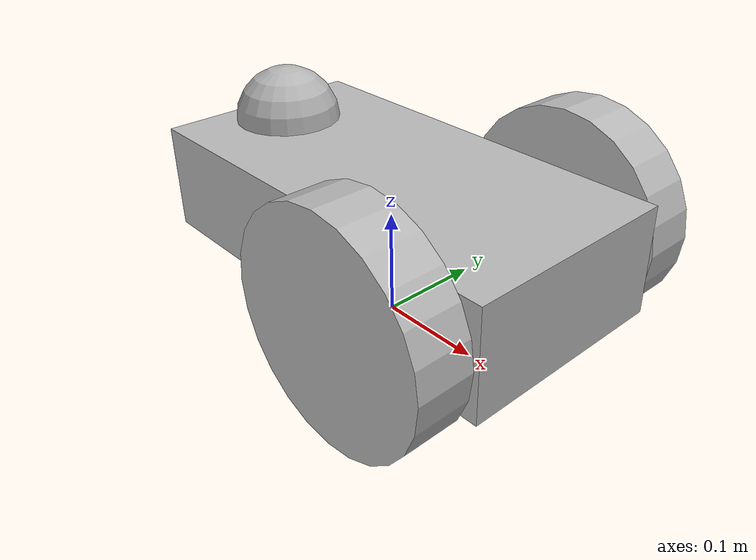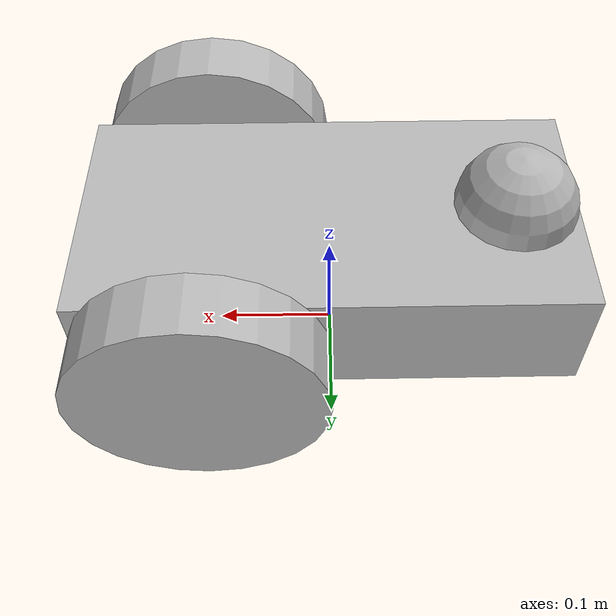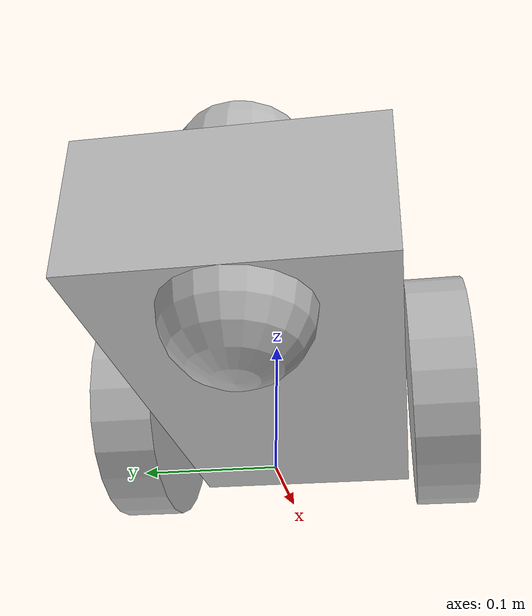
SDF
<?xml version='1.0'?>
<sdf version='1.4'>
	<model name="my_robot">
		<link name="base_footprint"/>
	        <link name='base_link'>
                	<pose>0 0 .1 0 0 0</pose>

			<collision name='collision'>
				<geometry>
					<box>
                  				<size>.4 .2 .1</size>
                			</box>
				</geometry>
 			</collision>

           		<visual name='visual'>
              			<geometry>
                			<box>
                  				<size>.4 .2 .1</size>
                			</box>
              			</geometry>
			</visual>
          <collision name='caster_collision'>
            <pose>-0.15 0 -0.05 0 0 0</pose>
            <geometry>
                <sphere>
                <radius>.05</radius>
              </sphere>
            </geometry>

            <surface>
              <friction>
                <ode>
                  <mu>0</mu>
                  <mu2>0</mu2>
                  <slip1>1.0</slip1>
                  <slip2>1.0</slip2>
                </ode>
              </friction>
            </surface>
          </collision>

          <visual name='caster_visual'>
            <pose>-0.15 0 -0.05 0 0 0</pose>
            <geometry>
              <sphere>
                <radius>.05</radius>
              </sphere>
            </geometry>
          </visual>
         </link>
    <joint name="base_joint" type="fixed">
      <parent>base_footprint</parent>
      <child>base_link</child>
      <pose>0.0 0.0 0.010 0 0 0</pose>
    </joint>

      <link name="left_wheel">
        <pose>0.1 0.13 0.1 0 1.5707 1.5707</pose>
        <collision name="collision">
          <geometry>
            <cylinder>
              <radius>.1</radius>
              <length>.05</length>
            </cylinder>
          </geometry>
        </collision>
        <visual name="visual">
          <geometry>
            <cylinder>
              <radius>.1</radius>
              <length>.05</length>
            </cylinder>
          </geometry>
        </visual>
      </link>
      <link name="right_wheel">
        <pose>0.1 -0.13 0.1 0 1.5707 1.5707</pose>
        <collision name="collision">
          <geometry>
            <cylinder>
              <radius>.1</radius>
              <length>.05</length>
            </cylinder>
          </geometry>
        </collision>
        <visual name="visual">
          <geometry>
            <cylinder>
              <radius>.1</radius>
              <length>.05</length>
            </cylinder>
          </geometry>
        </visual>
      </link>
    <link name="base_scan">
      <pose>-0.15 0 0.15 0 0 0</pose>
      <collision name="lidar_collision">
        <geometry>
          <sphere>
            <radius>.05</radius>
          </sphere>
        </geometry>
      </collision>
      <visual name='lidar_visual'>
        <geometry>
          <sphere>
            <radius>.05</radius>
          </sphere>
        </geometry>
      </visual>
   <sensor name="hls_lfcd_lds" type="ray">
        <always_on>true</always_on>
        <visualize>true</visualize>
        <update_rate>5</update_rate>
	<pose>0 0 0.06 0 0 0</pose>
        <ray>
          <scan>
            <horizontal>
              <samples>360</samples>
              <resolution>1.000000</resolution>
              <min_angle>0.000000</min_angle>
              <max_angle>6.280000</max_angle>
            </horizontal>
          </scan>
          <range>
            <min>0.120000</min>
            <max>3.5</max>
            <resolution>0.015000</resolution>
          </range>
          <noise>
            <type>gaussian</type>
            <mean>0.0</mean>
            <stddev>0.01</stddev>
          </noise>
        </ray>
        <plugin name="turtlebot3_laserscan" filename="libgazebo_ros_ray_sensor.so">
          <ros>
            <argument>~/out:=scan</argument>
          </ros>
          <output_type>sensor_msgs/LaserScan</output_type>
          <frame_name>base_scan</frame_name>
        </plugin>
      </sensor>

   </link>

   <joint type="fixed" name="lidar_joint">
     <pose>0 0 0.15 0 0 0</pose>
     <parent>base_link</parent>
     <child>base_scan</child>
   </joint>

      <joint type="revolute" name="wheel_left_joint">
        <parent>base_link</parent>
        <child>left_wheel</child>
        <axis>
          <xyz>0 1 0</xyz>
        </axis>
      </joint>

      <joint type="revolute" name="wheel_right_joint">
        <child>right_wheel</child>
        <parent>base_link</parent>
        <axis>
          <xyz>0 1 0</xyz>
        </axis>
</joint>

   <plugin name="turtlebot3_diff_drive" filename="libgazebo_ros_diff_drive.so">

      <ros>
      </ros>

      <update_rate>30</update_rate>

      <!-- wheels -->
      <left_joint>wheel_left_joint</left_joint>
      <right_joint>wheel_right_joint</right_joint>

      <!-- kinematics -->
      <wheel_separation>0.287</wheel_separation>
      <wheel_diameter>0.066</wheel_diameter>

      <!-- limits -->
      <max_wheel_torque>20</max_wheel_torque>
      <max_wheel_acceleration>1.0</max_wheel_acceleration>

      <command_topic>cmd_vel</command_topic>

      <!-- output -->
      <publish_odom>true</publish_odom>
      <publish_odom_tf>true</publish_odom_tf>
      <publish_wheel_tf>false</publish_wheel_tf>

      <odometry_topic>odom</odometry_topic>
      <odometry_frame>odom</odometry_frame>
      <robot_base_frame>base_link</robot_base_frame>

    </plugin>
    <plugin name="turtlebot3_joint_state" filename="libgazebo_ros_joint_state_publisher.so">
      <ros>
        <argument>~/out:=joint_states</argument>
      </ros>
      <update_rate>30</update_rate>
      <joint_name>wheel_left_joint</joint_name>
      <joint_name>wheel_right_joint</joint_name>
    </plugin>
 </model>
</sdf>
